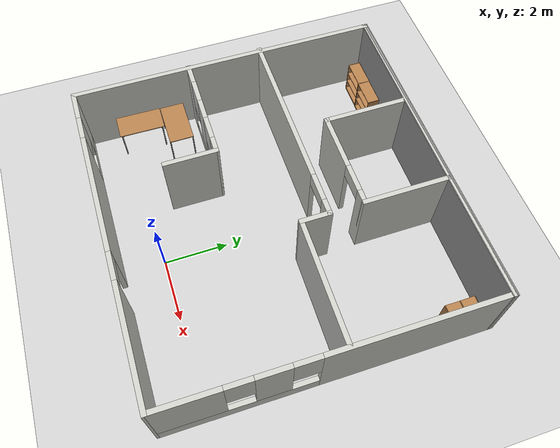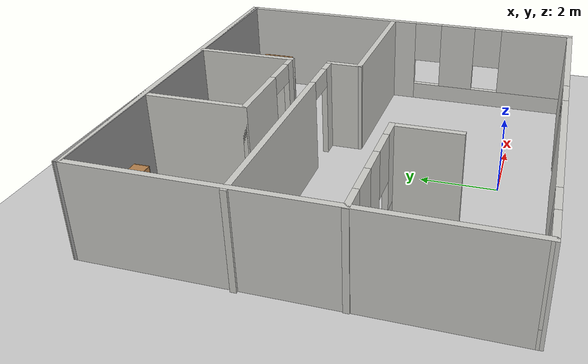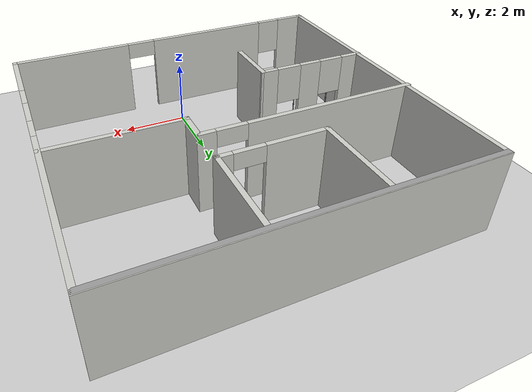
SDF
<sdf version="1.7">
 <world name="default">
  <light name="sun" type="directional">
   <pose>0 0 10 0 -0 0</pose>
   <diffuse>0.8 0.8 0.8 1</diffuse>
   <specular>0.2 0.2 0.2 1</specular>
   <attenuation>
    <range>1000</range>
    <constant>0.9</constant>
    <linear>0.01</linear>
    <quadratic>0.001</quadratic>
   </attenuation>
   <direction>-0.5 0.1 -0.9</direction>
   <spot><inner_angle>0</inner_angle><outer_angle>0</outer_angle><falloff>0</falloff></spot>
  </light>
  <model name="ground_plane">
   <static>1</static>
   <link name="link">
    <collision name="collision">
     <geometry><plane><normal>0 0 1</normal><size>100 100</size></plane></geometry>
     <surface><friction><ode><mu>100</mu><mu2>50</mu2></ode></friction></surface>
    </collision>
    <visual name="visual">
     <cast_shadows>0</cast_shadows>
     <geometry><plane><normal>0 0 1</normal><size>100 100</size></plane></geometry>
     <material>
      <script><uri>file://media/materials/scripts/gazebo.material</uri><name>Gazebo/Grey</name></script>
     </material>
    </visual>
   </link>
  </model>
  <gravity>0 0 -9.8</gravity>
  <magnetic_field>6e-06 2.3e-05 -4.2e-05</magnetic_field>
  <atmosphere type="adiabatic"/>
  <physics type="ode">
   <max_step_size>0.001</max_step_size>
   <real_time_factor>1</real_time_factor>
   <real_time_update_rate>1000</real_time_update_rate>
  </physics>
  <scene><ambient>0.4 0.4 0.4 1</ambient><background>0.7 0.7 0.7 1</background><shadows>1</shadows></scene>
  <audio><device>default</device></audio>
  <spherical_coordinates>
   <surface_model>EARTH_WGS84</surface_model>
   <latitude_deg>0</latitude_deg>
   <longitude_deg>0</longitude_deg>
   <elevation>0</elevation>
   <heading_deg>0</heading_deg>
  </spherical_coordinates>
  <model name="first_house">
   <pose>-0.171609 3.63557 0 0 -0 0</pose>
   <link name="Wall_25">
    <collision name="Wall_25_Collision">
     <geometry><box><size>10.5 0.15 2.5</size></box></geometry>
     <pose>0 0 1.25 0 -0 0</pose>
    </collision>
    <visual name="Wall_25_Visual">
     <pose>0 0 1.25 0 -0 0</pose>
     <geometry><box><size>10.5 0.15 2.5</size></box></geometry>
     <material>
      <script><uri>file://media/materials/scripts/gazebo.material</uri><name>Gazebo/Grey</name></script>
      <ambient>1 1 1 1</ambient>
     </material>
     <meta><layer>0</layer></meta>
    </visual>
    <pose>0.038089 4.9563 0 0 -0 0</pose>
   </link>
   <link name="Wall_26">
    <pose>5.19503 -0.012866 0 0 -0 -1.57443</pose>
    <visual name="Wall_26_Visual_0">
     <pose>-2.32998 0 1.25 0 -0 0</pose>
     <geometry><box><size>5.42844 0.15 2.5</size></box></geometry>
     <material>
      <script><uri>file://media/materials/scripts/gazebo.material</uri><name>Gazebo/CeilingTiled</name></script>
      <ambient>1 1 1 1</ambient>
     </material>
     <meta><layer>0</layer></meta>
    </visual>
    <collision name="Wall_26_Collision_0">
     <geometry><box><size>5.42844 0.15 2.5</size></box></geometry>
     <pose>-2.32998 0 1.25 0 -0 0</pose>
    </collision>
    <visual name="Wall_26_Visual_1">
     <pose>2.71422 0 0.25 0 -0 0</pose>
     <geometry><box><size>4.65996 0.15 0.5</size></box></geometry>
     <material>
      <script><uri>file://media/materials/scripts/gazebo.material</uri><name>Gazebo/CeilingTiled</name></script>
      <ambient>1 1 1 1</ambient>
     </material>
     <meta><layer>0</layer></meta>
    </visual>
    <collision name="Wall_26_Collision_1">
     <geometry><box><size>4.65996 0.15 0.5</size></box></geometry>
     <pose>2.71422 0 0.25 0 -0 0</pose>
    </collision>
    <visual name="Wall_26_Visual_2">
     <pose>1.69481 0 1.5 0 -0 0</pose>
     <geometry><box><size>1.02115 0.15 2</size></box></geometry>
     <material>
      <script><uri>file://media/materials/scripts/gazebo.material</uri><name>Gazebo/CeilingTiled</name></script>
      <ambient>1 1 1 1</ambient>
     </material>
     <meta><layer>0</layer></meta>
    </visual>
    <collision name="Wall_26_Collision_2">
     <geometry><box><size>1.02115 0.15 2</size></box></geometry>
     <pose>1.69481 0 1.5 0 -0 0</pose>
    </collision>
    <visual name="Wall_26_Visual_3">
     <pose>4.0248 0 1.5 0 -0 0</pose>
     <geometry><box><size>2.03881 0.15 2</size></box></geometry>
     <material>
      <script><uri>file://media/materials/scripts/gazebo.material</uri><name>Gazebo/CeilingTiled</name></script>
      <ambient>1 1 1 1</ambient>
     </material>
     <meta><layer>0</layer></meta>
    </visual>
    <collision name="Wall_26_Collision_3">
     <geometry><box><size>2.03881 0.15 2</size></box></geometry>
     <pose>4.0248 0 1.5 0 -0 0</pose>
    </collision>
    <visual name="Wall_26_Visual_4">
     <pose>0.784239 0 1.9 0 -0 0</pose>
     <geometry><box><size>0.8 0.15 1.2</size></box></geometry>
     <material>
      <script><uri>file://media/materials/scripts/gazebo.material</uri><name>Gazebo/CeilingTiled</name></script>
      <ambient>1 1 1 1</ambient>
     </material>
     <meta><layer>0</layer></meta>
    </visual>
    <collision name="Wall_26_Collision_4">
     <geometry><box><size>0.8 0.15 1.2</size></box></geometry>
     <pose>0.784239 0 1.9 0 -0 0</pose>
    </collision>
    <visual name="Wall_26_Visual_5">
     <pose>2.60539 0 1.9 0 -0 0</pose>
     <geometry><box><size>0.8 0.15 1.2</size></box></geometry>
     <material>
      <script><uri>file://media/materials/scripts/gazebo.material</uri><name>Gazebo/CeilingTiled</name></script>
      <ambient>1 1 1 1</ambient>
     </material>
     <meta><layer>0</layer></meta>
    </visual>
    <collision name="Wall_26_Collision_5">
     <geometry><box><size>0.8 0.15 1.2</size></box></geometry>
     <pose>2.60539 0 1.9 0 -0 0</pose>
    </collision>
   </link>
   <link name="Wall_27">
    <pose>0.001972 -4.98203 0 0 -0 3.14159</pose>
    <visual name="Wall_27_Visual_0">
     <pose>-3.38556 0 1.25 0 -0 0</pose>
     <geometry><box><size>3.72887 0.15 2.5</size></box></geometry>
     <material>
      <script><uri>file://media/materials/scripts/gazebo.material</uri><name>Gazebo/CeilingTiled</name></script>
      <ambient>1 1 1 1</ambient>
     </material>
     <meta><layer>0</layer></meta>
    </visual>
    <collision name="Wall_27_Collision_0">
     <geometry><box><size>3.72887 0.15 2.5</size></box></geometry>
     <pose>-3.38556 0 1.25 0 -0 0</pose>
    </collision>
    <visual name="Wall_27_Visual_1">
     <pose>1.40394 0 1.25 0 -0 0</pose>
     <geometry><box><size>4.05014 0.15 2.5</size></box></geometry>
     <material>
      <script><uri>file://media/materials/scripts/gazebo.material</uri><name>Gazebo/CeilingTiled</name></script>
      <ambient>1 1 1 1</ambient>
     </material>
     <meta><layer>0</layer></meta>
    </visual>
    <collision name="Wall_27_Collision_1">
     <geometry><box><size>4.05014 0.15 2.5</size></box></geometry>
     <pose>1.40394 0 1.25 0 -0 0</pose>
    </collision>
    <visual name="Wall_27_Visual_2">
     <pose>4.3395 0 0.25 0 -0 0</pose>
     <geometry><box><size>1.82099 0.15 0.5</size></box></geometry>
     <material>
      <script><uri>file://media/materials/scripts/gazebo.material</uri><name>Gazebo/CeilingTiled</name></script>
      <ambient>1 1 1 1</ambient>
     </material>
     <meta><layer>0</layer></meta>
    </visual>
    <collision name="Wall_27_Collision_2">
     <geometry><box><size>1.82099 0.15 0.5</size></box></geometry>
     <pose>4.3395 0 0.25 0 -0 0</pose>
    </collision>
    <visual name="Wall_27_Visual_3">
     <pose>4.73951 0 1.5 0 -0 0</pose>
     <geometry><box><size>1.02099 0.15 2</size></box></geometry>
     <material>
      <script><uri>file://media/materials/scripts/gazebo.material</uri><name>Gazebo/CeilingTiled</name></script>
      <ambient>1 1 1 1</ambient>
     </material>
     <meta><layer>0</layer></meta>
    </visual>
    <collision name="Wall_27_Collision_3">
     <geometry><box><size>1.02099 0.15 2</size></box></geometry>
     <pose>4.73951 0 1.5 0 -0 0</pose>
    </collision>
    <visual name="Wall_27_Visual_4">
     <pose>3.82901 0 1.9 0 -0 0</pose>
     <geometry><box><size>0.8 0.15 1.2</size></box></geometry>
     <material>
      <script><uri>file://media/materials/scripts/gazebo.material</uri><name>Gazebo/CeilingTiled</name></script>
      <ambient>1 1 1 1</ambient>
     </material>
     <meta><layer>0</layer></meta>
    </visual>
    <collision name="Wall_27_Collision_4">
     <geometry><box><size>0.8 0.15 1.2</size></box></geometry>
     <pose>3.82901 0 1.9 0 -0 0</pose>
    </collision>
    <visual name="Wall_27_Visual_5">
     <pose>-1.07113 0 2.25 0 -0 0</pose>
     <geometry><box><size>0.9 0.15 0.5</size></box></geometry>
     <material>
      <script><uri>file://media/materials/scripts/gazebo.material</uri><name>Gazebo/CeilingTiled</name></script>
      <ambient>1 1 1 1</ambient>
     </material>
     <meta><layer>0</layer></meta>
    </visual>
    <collision name="Wall_27_Collision_5">
     <geometry><box><size>0.9 0.15 0.5</size></box></geometry>
     <pose>-1.07113 0 2.25 0 -0 0</pose>
    </collision>
   </link>
   <link name="Wall_28">
    <collision name="Wall_28_Collision">
     <geometry><box><size>10.0884 0.15 2.5</size></box></geometry>
     <pose>0 0 1.25 0 -0 0</pose>
    </collision>
    <visual name="Wall_28_Visual">
     <pose>0 0 1.25 0 -0 0</pose>
     <geometry><box><size>10.0884 0.15 2.5</size></box></geometry>
     <material>
      <script><uri>file://media/materials/scripts/gazebo.material</uri><name>Gazebo/CeilingTiled</name></script>
      <ambient>1 1 1 1</ambient>
     </material>
     <meta><layer>0</layer></meta>
    </visual>
    <pose>-5.15497 -0.012866 0 0 -0 1.56716</pose>
   </link>
   <link name="Wall_29">
    <collision name="Wall_29_Collision">
     <geometry><box><size>10.5 0.15 2.5</size></box></geometry>
     <pose>0 0 1.25 0 -0 0</pose>
    </collision>
    <visual name="Wall_29_Visual">
     <pose>0 0 1.25 0 -0 0</pose>
     <geometry><box><size>10.5 0.15 2.5</size></box></geometry>
     <material>
      <script><uri>file://media/materials/scripts/gazebo.material</uri><name>Gazebo/CeilingTiled</name></script>
      <ambient>1 1 1 1</ambient>
     </material>
     <meta><layer>0</layer></meta>
    </visual>
    <pose>0.038089 4.98231 0 0 -0 0</pose>
   </link>
   <link name="Wall_33">
    <pose>-3.44599 -1.23739 0 0 -0 -0.009852</pose>
    <visual name="Wall_33_Visual_0">
     <pose>-1.45176 0 1.25 0 -0 0</pose>
     <geometry><box><size>0.717613 0.15 2.5</size></box></geometry>
     <material>
      <script><uri>file://media/materials/scripts/gazebo.material</uri><name>Gazebo/CeilingTiled</name></script>
      <ambient>1 1 1 1</ambient>
     </material>
     <meta><layer>0</layer></meta>
    </visual>
    <collision name="Wall_33_Collision_0">
     <geometry><box><size>0.717613 0.15 2.5</size></box></geometry>
     <pose>-1.45176 0 1.25 0 -0 0</pose>
    </collision>
    <visual name="Wall_33_Visual_1">
     <pose>0.358806 0 0.25 0 -0 0</pose>
     <geometry><box><size>2.90352 0.15 0.5</size></box></geometry>
     <material>
      <script><uri>file://media/materials/scripts/gazebo.material</uri><name>Gazebo/CeilingTiled</name></script>
      <ambient>1 1 1 1</ambient>
     </material>
     <meta><layer>0</layer></meta>
    </visual>
    <collision name="Wall_33_Collision_1">
     <geometry><box><size>2.90352 0.15 0.5</size></box></geometry>
     <pose>0.358806 0 0.25 0 -0 0</pose>
    </collision>
    <visual name="Wall_33_Visual_2">
     <pose>0.068137 0 1.5 0 -0 0</pose>
     <geometry><box><size>0.722186 0.15 2</size></box></geometry>
     <material>
      <script><uri>file://media/materials/scripts/gazebo.material</uri><name>Gazebo/CeilingTiled</name></script>
      <ambient>1 1 1 1</ambient>
     </material>
     <meta><layer>0</layer></meta>
    </visual>
    <collision name="Wall_33_Collision_2">
     <geometry><box><size>0.722186 0.15 2</size></box></geometry>
     <pose>0.068137 0 1.5 0 -0 0</pose>
    </collision>
    <visual name="Wall_33_Visual_3">
     <pose>1.5199 0 1.5 0 -0 0</pose>
     <geometry><box><size>0.581338 0.15 2</size></box></geometry>
     <material>
      <script><uri>file://media/materials/scripts/gazebo.material</uri><name>Gazebo/CeilingTiled</name></script>
      <ambient>1 1 1 1</ambient>
     </material>
     <meta><layer>0</layer></meta>
    </visual>
    <collision name="Wall_33_Collision_3">
     <geometry><box><size>0.581338 0.15 2</size></box></geometry>
     <pose>1.5199 0 1.5 0 -0 0</pose>
    </collision>
    <visual name="Wall_33_Visual_4">
     <pose>-0.692956 0 1.9 0 -0 0</pose>
     <geometry><box><size>0.8 0.15 1.2</size></box></geometry>
     <material>
      <script><uri>file://media/materials/scripts/gazebo.material</uri><name>Gazebo/CeilingTiled</name></script>
      <ambient>1 1 1 1</ambient>
     </material>
     <meta><layer>0</layer></meta>
    </visual>
    <collision name="Wall_33_Collision_4">
     <geometry><box><size>0.8 0.15 1.2</size></box></geometry>
     <pose>-0.692956 0 1.9 0 -0 0</pose>
    </collision>
    <visual name="Wall_33_Visual_5">
     <pose>0.82923 0 1.9 0 -0 0</pose>
     <geometry><box><size>0.8 0.15 1.2</size></box></geometry>
     <material>
      <script><uri>file://media/materials/scripts/gazebo.material</uri><name>Gazebo/CeilingTiled</name></script>
      <ambient>1 1 1 1</ambient>
     </material>
     <meta><layer>0</layer></meta>
    </visual>
    <collision name="Wall_33_Collision_5">
     <geometry><box><size>0.8 0.15 1.2</size></box></geometry>
     <pose>0.82923 0 1.9 0 -0 0</pose>
    </collision>
   </link>
   <link name="Wall_36">
    <pose>-1.91336 1.20823 0 0 -0 0</pose>
    <visual name="Wall_36_Visual_0">
     <pose>-0.722685 0 1.25 0 -0 0</pose>
     <geometry><box><size>5.30463 0.15 2.5</size></box></geometry>
     <material>
      <script><uri>file://media/materials/scripts/gazebo.material</uri><name>Gazebo/CeilingTiled</name></script>
      <ambient>1 1 1 1</ambient>
     </material>
     <meta><layer>0</layer></meta>
    </visual>
    <collision name="Wall_36_Collision_0">
     <geometry><box><size>5.30463 0.15 2.5</size></box></geometry>
     <pose>-0.722685 0 1.25 0 -0 0</pose>
    </collision>
    <visual name="Wall_36_Visual_1">
     <pose>3.10231 0 1.25 0 -0 0</pose>
     <geometry><box><size>0.54537 0.15 2.5</size></box></geometry>
     <material>
      <script><uri>file://media/materials/scripts/gazebo.material</uri><name>Gazebo/CeilingTiled</name></script>
      <ambient>1 1 1 1</ambient>
     </material>
     <meta><layer>0</layer></meta>
    </visual>
    <collision name="Wall_36_Collision_1">
     <geometry><box><size>0.54537 0.15 2.5</size></box></geometry>
     <pose>3.10231 0 1.25 0 -0 0</pose>
    </collision>
    <visual name="Wall_36_Visual_2">
     <pose>2.37963 0 2.25 0 -0 0</pose>
     <geometry><box><size>0.9 0.15 0.5</size></box></geometry>
     <material>
      <script><uri>file://media/materials/scripts/gazebo.material</uri><name>Gazebo/CeilingTiled</name></script>
      <ambient>1 1 1 1</ambient>
     </material>
     <meta><layer>0</layer></meta>
    </visual>
    <collision name="Wall_36_Collision_2">
     <geometry><box><size>0.9 0.15 0.5</size></box></geometry>
     <pose>2.37963 0 2.25 0 -0 0</pose>
    </collision>
   </link>
   <link name="Wall_37">
    <collision name="Wall_37_Collision">
     <geometry><box><size>1 0.15 2.5</size></box></geometry>
     <pose>0 0 1.25 0 -0 0</pose>
    </collision>
    <visual name="Wall_37_Visual">
     <pose>0 0 1.25 0 -0 0</pose>
     <geometry><box><size>1 0.15 2.5</size></box></geometry>
     <material>
      <script><uri>file://media/materials/scripts/gazebo.material</uri><name>Gazebo/CeilingTiled</name></script>
      <ambient>1 1 1 1</ambient>
     </material>
     <meta><layer>0</layer></meta>
    </visual>
    <pose>1.38664 0.783227 0 0 -0 -1.5708</pose>
   </link>
   <link name="Wall_38">
    <collision name="Wall_38_Collision">
     <geometry><box><size>3.95838 0.15 2.5</size></box></geometry>
     <pose>0 0 1.25 0 -0 0</pose>
    </collision>
    <visual name="Wall_38_Visual">
     <pose>0 0 1.25 0 -0 0</pose>
     <geometry><box><size>3.95838 0.15 2.5</size></box></geometry>
     <material>
      <script><uri>file://media/materials/scripts/gazebo.material</uri><name>Gazebo/CeilingTiled</name></script>
      <ambient>1 1 1 1</ambient>
     </material>
     <meta><layer>0</layer></meta>
    </visual>
    <pose>3.29049 0.337182 0 0 -0 -0.011053</pose>
   </link>
   <link name="Wall_43">
    <collision name="Wall_43_Collision">
     <geometry><box><size>2.75 0.15 2.5</size></box></geometry>
     <pose>0 0 1.25 0 -0 0</pose>
    </collision>
    <visual name="Wall_43_Visual">
     <pose>0 0 1.25 0 -0 0</pose>
     <geometry><box><size>2.75 0.15 2.5</size></box></geometry>
     <material>
      <script><uri>file://media/materials/scripts/gazebo.material</uri><name>Gazebo/CeilingTiled</name></script>
      <ambient>1 1 1 1</ambient>
     </material>
     <meta><layer>0</layer></meta>
    </visual>
    <pose>-1.74395 3.59719 0 0 -0 -1.5708</pose>
   </link>
   <link name="Wall_44">
    <pose>-0.193952 2.29719 0 0 -0 0</pose>
    <visual name="Wall_44_Visual_0">
     <pose>-0.694308 0 1.25 0 -0 0</pose>
     <geometry><box><size>1.86139 0.15 2.5</size></box></geometry>
     <material>
      <script><uri>file://media/materials/scripts/gazebo.material</uri><name>Gazebo/CeilingTiled</name></script>
      <ambient>1 1 1 1</ambient>
     </material>
     <meta><layer>0</layer></meta>
    </visual>
    <collision name="Wall_44_Collision_0">
     <geometry><box><size>1.86139 0.15 2.5</size></box></geometry>
     <pose>-0.694308 0 1.25 0 -0 0</pose>
    </collision>
    <visual name="Wall_44_Visual_1">
     <pose>1.38069 0 1.25 0 -0 0</pose>
     <geometry><box><size>0.488615 0.15 2.5</size></box></geometry>
     <material>
      <script><uri>file://media/materials/scripts/gazebo.material</uri><name>Gazebo/CeilingTiled</name></script>
      <ambient>1 1 1 1</ambient>
     </material>
     <meta><layer>0</layer></meta>
    </visual>
    <collision name="Wall_44_Collision_1">
     <geometry><box><size>0.488615 0.15 2.5</size></box></geometry>
     <pose>1.38069 0 1.25 0 -0 0</pose>
    </collision>
    <visual name="Wall_44_Visual_2">
     <pose>0.686385 0 2.25 0 -0 0</pose>
     <geometry><box><size>0.9 0.15 0.5</size></box></geometry>
     <material>
      <script><uri>file://media/materials/scripts/gazebo.material</uri><name>Gazebo/CeilingTiled</name></script>
      <ambient>1 1 1 1</ambient>
     </material>
     <meta><layer>0</layer></meta>
    </visual>
    <collision name="Wall_44_Collision_2">
     <geometry><box><size>0.9 0.15 0.5</size></box></geometry>
     <pose>0.686385 0 2.25 0 -0 0</pose>
    </collision>
   </link>
   <link name="Wall_45">
    <collision name="Wall_45_Collision">
     <geometry><box><size>2.75 0.15 2.5</size></box></geometry>
     <pose>0 0 1.25 0 -0 0</pose>
    </collision>
    <visual name="Wall_45_Visual">
     <pose>0 0 1.25 0 -0 0</pose>
     <geometry><box><size>2.75 0.15 2.5</size></box></geometry>
     <material>
      <script><uri>file://media/materials/scripts/gazebo.material</uri><name>Gazebo/CeilingTiled</name></script>
      <ambient>1 1 1 1</ambient>
     </material>
     <meta><layer>0</layer></meta>
    </visual>
    <pose>1.35605 3.59719 0 0 -0 1.5708</pose>
   </link>
   <link name="Wall_49">
    <collision name="Wall_49_Collision">
     <geometry><box><size>1.75 0.15 2.5</size></box></geometry>
     <pose>0 0 1.25 0 -0 0</pose>
    </collision>
    <visual name="Wall_49_Visual">
     <pose>0 0 1.25 0 -0 0</pose>
     <geometry><box><size>1.75 0.15 2.5</size></box></geometry>
     <material>
      <script><uri>file://media/materials/scripts/gazebo.material</uri><name>Gazebo/CeilingTiled</name></script>
      <ambient>1 1 1 1</ambient>
     </material>
     <meta><layer>0</layer></meta>
    </visual>
    <pose>-1.71051 -2.05449 0 0 -0 -1.5708</pose>
   </link>
   <static>1</static>
  </model>
  <model name="cabinet">
   <static>1</static>
   <link name="cabinet_bottom_plate">
    <inertial>
     <pose>0 0 -1 0 -0 0</pose>
     <inertia><ixx>2.05</ixx><ixy>0</ixy><ixz>0</ixz><iyy>2.05</iyy><iyz>0</iyz><izz>2.05</izz></inertia>
     <mass>25</mass>
    </inertial>
    <collision name="cabinet_bottom_plate_geom">
     <pose>0 0 0.01 0 -0 0</pose>
     <geometry><box><size>0.45 0.45 0.02</size></box></geometry>
    </collision>
    <visual name="cabinet_bottom_plate_geom_visual">
     <pose>0 0 0.01 0 -0 0</pose>
     <geometry><box><size>0.45 0.45 0.02</size></box></geometry>
     <material>
      <script><uri>file://media/materials/scripts/gazebo.material</uri><name>Gazebo/Wood</name></script>
     </material>
    </visual>
    <collision name="cabinet_bottom_plate_geom_cabinet_back_plate">
     <pose>0.235 0 0.51 0 -0 0</pose>
     <geometry><box><size>0.02 0.45 1.02</size></box></geometry>
    </collision>
    <visual name="cabinet_bottom_plate_geom_cabinet_back_plate_visual">
     <pose>0.235 0 0.51 0 -0 0</pose>
     <geometry><box><size>0.02 0.45 1.02</size></box></geometry>
     <material>
      <script><uri>file://media/materials/scripts/gazebo.material</uri><name>Gazebo/Wood</name></script>
     </material>
    </visual>
    <collision name="cabinet_bottom_plate_geom_cabinet_left_plate">
     <pose>0 0.235 0.51 0 -0 0</pose>
     <geometry><box><size>0.45 0.02 1.02</size></box></geometry>
    </collision>
    <visual name="cabinet_bottom_plate_geom_cabinet_left_plate_visual">
     <pose>0 0.235 0.51 0 -0 0</pose>
     <geometry><box><size>0.45 0.02 1.02</size></box></geometry>
     <material>
      <script><uri>file://media/materials/scripts/gazebo.material</uri><name>Gazebo/Wood</name></script>
     </material>
    </visual>
    <collision name="cabinet_bottom_plate_geom_cabinet_middle_plate">
     <pose>0 0 0.51 0 -0 0</pose>
     <geometry><box><size>0.45 0.45 0.02</size></box></geometry>
    </collision>
    <visual name="cabinet_bottom_plate_geom_cabinet_middle_plate_visual">
     <pose>0 0 0.51 0 -0 0</pose>
     <geometry><box><size>0.45 0.45 0.02</size></box></geometry>
     <material>
      <script><uri>file://media/materials/scripts/gazebo.material</uri><name>Gazebo/Wood</name></script>
     </material>
    </visual>
    <collision name="cabinet_bottom_plate_geom_cabinet_right_plate">
     <pose>0 -0.235 0.51 0 -0 0</pose>
     <geometry><box><size>0.45 0.02 1.02</size></box></geometry>
    </collision>
    <visual name="cabinet_bottom_plate_geom_cabinet_right_plate_visual">
     <pose>0 -0.235 0.51 0 -0 0</pose>
     <geometry><box><size>0.45 0.02 1.02</size></box></geometry>
     <material>
      <script><uri>file://media/materials/scripts/gazebo.material</uri><name>Gazebo/Wood</name></script>
     </material>
    </visual>
    <collision name="cabinet_bottom_plate_geom_cabinet_top_plate">
     <pose>0 0 1.01 0 -0 0</pose>
     <geometry><box><size>0.45 0.45 0.02</size></box></geometry>
    </collision>
    <visual name="cabinet_bottom_plate_geom_cabinet_top_plate_visual">
     <pose>0 0 1.01 0 -0 0</pose>
     <geometry><box><size>0.45 0.45 0.02</size></box></geometry>
     <material>
      <script><uri>file://media/materials/scripts/gazebo.material</uri><name>Gazebo/Wood</name></script>
     </material>
    </visual>
   </link>
   <pose>4.55901 7.98947 0 0 -0 0</pose>
  </model>
  <model name="cabinet_0">
   <static>1</static>
   <link name="cabinet_bottom_plate">
    <inertial>
     <pose>0 0 -1 0 -0 0</pose>
     <inertia><ixx>2.05</ixx><ixy>0</ixy><ixz>0</ixz><iyy>2.05</iyy><iyz>0</iyz><izz>2.05</izz></inertia>
     <mass>25</mass>
    </inertial>
    <collision name="cabinet_bottom_plate_geom">
     <pose>0 0 0.01 0 -0 0</pose>
     <geometry><box><size>0.45 0.45 0.02</size></box></geometry>
    </collision>
    <visual name="cabinet_bottom_plate_geom_visual">
     <pose>0 0 0.01 0 -0 0</pose>
     <geometry><box><size>0.45 0.45 0.02</size></box></geometry>
     <material>
      <script><uri>file://media/materials/scripts/gazebo.material</uri><name>Gazebo/Wood</name></script>
     </material>
    </visual>
    <collision name="cabinet_bottom_plate_geom_cabinet_back_plate">
     <pose>0.235 0 0.51 0 -0 0</pose>
     <geometry><box><size>0.02 0.45 1.02</size></box></geometry>
    </collision>
    <visual name="cabinet_bottom_plate_geom_cabinet_back_plate_visual">
     <pose>0.235 0 0.51 0 -0 0</pose>
     <geometry><box><size>0.02 0.45 1.02</size></box></geometry>
     <material>
      <script><uri>file://media/materials/scripts/gazebo.material</uri><name>Gazebo/Wood</name></script>
     </material>
    </visual>
    <collision name="cabinet_bottom_plate_geom_cabinet_left_plate">
     <pose>0 0.235 0.51 0 -0 0</pose>
     <geometry><box><size>0.45 0.02 1.02</size></box></geometry>
    </collision>
    <visual name="cabinet_bottom_plate_geom_cabinet_left_plate_visual">
     <pose>0 0.235 0.51 0 -0 0</pose>
     <geometry><box><size>0.45 0.02 1.02</size></box></geometry>
     <material>
      <script><uri>file://media/materials/scripts/gazebo.material</uri><name>Gazebo/Wood</name></script>
     </material>
    </visual>
    <collision name="cabinet_bottom_plate_geom_cabinet_middle_plate">
     <pose>0 0 0.51 0 -0 0</pose>
     <geometry><box><size>0.45 0.45 0.02</size></box></geometry>
    </collision>
    <visual name="cabinet_bottom_plate_geom_cabinet_middle_plate_visual">
     <pose>0 0 0.51 0 -0 0</pose>
     <geometry><box><size>0.45 0.45 0.02</size></box></geometry>
     <material>
      <script><uri>file://media/materials/scripts/gazebo.material</uri><name>Gazebo/Wood</name></script>
     </material>
    </visual>
    <collision name="cabinet_bottom_plate_geom_cabinet_right_plate">
     <pose>0 -0.235 0.51 0 -0 0</pose>
     <geometry><box><size>0.45 0.02 1.02</size></box></geometry>
    </collision>
    <visual name="cabinet_bottom_plate_geom_cabinet_right_plate_visual">
     <pose>0 -0.235 0.51 0 -0 0</pose>
     <geometry><box><size>0.45 0.02 1.02</size></box></geometry>
     <material>
      <script><uri>file://media/materials/scripts/gazebo.material</uri><name>Gazebo/Wood</name></script>
     </material>
    </visual>
    <collision name="cabinet_bottom_plate_geom_cabinet_top_plate">
     <pose>0 0 1.01 0 -0 0</pose>
     <geometry><box><size>0.45 0.45 0.02</size></box></geometry>
    </collision>
    <visual name="cabinet_bottom_plate_geom_cabinet_top_plate_visual">
     <pose>0 0 1.01 0 -0 0</pose>
     <geometry><box><size>0.45 0.45 0.02</size></box></geometry>
     <material>
      <script><uri>file://media/materials/scripts/gazebo.material</uri><name>Gazebo/Wood</name></script>
     </material>
    </visual>
   </link>
   <pose>4.56021 7.51241 0 0 -0 0</pose>
  </model>
  <model name="table">
   <static>1</static>
   <link name="link">
    <collision name="surface">
     <pose>0 0 1 0 -0 0</pose>
     <geometry><box><size>1.5 0.8 0.03</size></box></geometry>
     <surface><friction><ode><mu>0.6</mu><mu2>0.6</mu2></ode></friction></surface>
    </collision>
    <visual name="visual1">
     <pose>0 0 1 0 -0 0</pose>
     <geometry><box><size>1.5 0.8 0.03</size></box></geometry>
     <material>
      <script><uri>file://media/materials/scripts/gazebo.material</uri><name>Gazebo/Wood</name></script>
     </material>
    </visual>
    <collision name="front_left_leg">
     <pose>0.68 0.38 0.5 0 -0 0</pose>
     <geometry><cylinder><radius>0.02</radius><length>1</length></cylinder></geometry>
    </collision>
    <visual name="front_left_leg">
     <pose>0.68 0.38 0.5 0 -0 0</pose>
     <geometry><cylinder><radius>0.02</radius><length>1</length></cylinder></geometry>
     <material>
      <script><uri>file://media/materials/scripts/gazebo.material</uri><name>Gazebo/Grey</name></script>
     </material>
    </visual>
    <collision name="front_right_leg">
     <pose>0.68 -0.38 0.5 0 -0 0</pose>
     <geometry><cylinder><radius>0.02</radius><length>1</length></cylinder></geometry>
    </collision>
    <visual name="front_right_leg">
     <pose>0.68 -0.38 0.5 0 -0 0</pose>
     <geometry><cylinder><radius>0.02</radius><length>1</length></cylinder></geometry>
     <material>
      <script><uri>file://media/materials/scripts/gazebo.material</uri><name>Gazebo/Grey</name></script>
     </material>
    </visual>
    <collision name="back_right_leg">
     <pose>-0.68 -0.38 0.5 0 -0 0</pose>
     <geometry><cylinder><radius>0.02</radius><length>1</length></cylinder></geometry>
    </collision>
    <visual name="back_right_leg">
     <pose>-0.68 -0.38 0.5 0 -0 0</pose>
     <geometry><cylinder><radius>0.02</radius><length>1</length></cylinder></geometry>
     <material>
      <script><uri>file://media/materials/scripts/gazebo.material</uri><name>Gazebo/Grey</name></script>
     </material>
    </visual>
    <collision name="back_left_leg">
     <pose>-0.68 0.38 0.5 0 -0 0</pose>
     <geometry><cylinder><radius>0.02</radius><length>1</length></cylinder></geometry>
    </collision>
    <visual name="back_left_leg">
     <pose>-0.68 0.38 0.5 0 -0 0</pose>
     <geometry><cylinder><radius>0.02</radius><length>1</length></cylinder></geometry>
     <material>
      <script><uri>file://media/materials/scripts/gazebo.material</uri><name>Gazebo/Grey</name></script>
     </material>
    </visual>
   </link>
   <pose>-4.47847 1.59594 0 0 -0 0</pose>
  </model>
  <model name="table_0">
   <static>1</static>
   <link name="link">
    <collision name="surface">
     <pose>0 0 1 0 -0 0</pose>
     <geometry><box><size>1.5 0.8 0.03</size></box></geometry>
     <surface><friction><ode><mu>0.6</mu><mu2>0.6</mu2></ode></friction></surface>
    </collision>
    <visual name="visual1">
     <pose>0 0 1 0 -0 0</pose>
     <geometry><box><size>1.5 0.8 0.03</size></box></geometry>
     <material>
      <script><uri>file://media/materials/scripts/gazebo.material</uri><name>Gazebo/Wood</name></script>
     </material>
    </visual>
    <collision name="front_left_leg">
     <pose>0.68 0.38 0.5 0 -0 0</pose>
     <geometry><cylinder><radius>0.02</radius><length>1</length></cylinder></geometry>
    </collision>
    <visual name="front_left_leg">
     <pose>0.68 0.38 0.5 0 -0 0</pose>
     <geometry><cylinder><radius>0.02</radius><length>1</length></cylinder></geometry>
     <material>
      <script><uri>file://media/materials/scripts/gazebo.material</uri><name>Gazebo/Grey</name></script>
     </material>
    </visual>
    <collision name="front_right_leg">
     <pose>0.68 -0.38 0.5 0 -0 0</pose>
     <geometry><cylinder><radius>0.02</radius><length>1</length></cylinder></geometry>
    </collision>
    <visual name="front_right_leg">
     <pose>0.68 -0.38 0.5 0 -0 0</pose>
     <geometry><cylinder><radius>0.02</radius><length>1</length></cylinder></geometry>
     <material>
      <script><uri>file://media/materials/scripts/gazebo.material</uri><name>Gazebo/Grey</name></script>
     </material>
    </visual>
    <collision name="back_right_leg">
     <pose>-0.68 -0.38 0.5 0 -0 0</pose>
     <geometry><cylinder><radius>0.02</radius><length>1</length></cylinder></geometry>
    </collision>
    <visual name="back_right_leg">
     <pose>-0.68 -0.38 0.5 0 -0 0</pose>
     <geometry><cylinder><radius>0.02</radius><length>1</length></cylinder></geometry>
     <material>
      <script><uri>file://media/materials/scripts/gazebo.material</uri><name>Gazebo/Grey</name></script>
     </material>
    </visual>
    <collision name="back_left_leg">
     <pose>-0.68 0.38 0.5 0 -0 0</pose>
     <geometry><cylinder><radius>0.02</radius><length>1</length></cylinder></geometry>
    </collision>
    <visual name="back_left_leg">
     <pose>-0.68 0.38 0.5 0 -0 0</pose>
     <geometry><cylinder><radius>0.02</radius><length>1</length></cylinder></geometry>
     <material>
      <script><uri>file://media/materials/scripts/gazebo.material</uri><name>Gazebo/Grey</name></script>
     </material>
    </visual>
   </link>
   <pose>-4.85488 0.429534 0 0 0 -1.58471</pose>
  </model>
  <model name="bookshelf">
   <static>1</static>
   <link name="link">
    <inertial><mass>1</mass></inertial>
    <collision name="back">
     <pose>0 0.005 0.6 0 -0 0</pose>
     <geometry><box><size>0.9 0.01 1.2</size></box></geometry>
    </collision>
    <visual name="visual1">
     <pose>0 0.005 0.6 0 -0 0</pose>
     <geometry><box><size>0.9 0.01 1.2</size></box></geometry>
     <material>
      <script><uri>file://media/materials/scripts/gazebo.material</uri><name>Gazebo/Wood</name></script>
     </material>
    </visual>
    <collision name="left_side">
     <pose>0.45 -0.195 0.6 0 -0 0</pose>
     <geometry><box><size>0.02 0.4 1.2</size></box></geometry>
    </collision>
    <visual name="visual2">
     <pose>0.45 -0.195 0.6 0 -0 0</pose>
     <geometry><box><size>0.02 0.4 1.2</size></box></geometry>
     <material>
      <script><uri>file://media/materials/scripts/gazebo.material</uri><name>Gazebo/Wood</name></script>
     </material>
    </visual>
    <collision name="right_side">
     <pose>-0.45 -0.195 0.6 0 -0 0</pose>
     <geometry><box><size>0.02 0.4 1.2</size></box></geometry>
    </collision>
    <visual name="visual3">
     <pose>-0.45 -0.195 0.6 0 -0 0</pose>
     <geometry><box><size>0.02 0.4 1.2</size></box></geometry>
     <material>
      <script><uri>file://media/materials/scripts/gazebo.material</uri><name>Gazebo/Wood</name></script>
     </material>
    </visual>
    <collision name="bottom">
     <pose>0 -0.195 0.03 0 -0 0</pose>
     <geometry><box><size>0.88 0.4 0.06</size></box></geometry>
    </collision>
    <visual name="visual4">
     <pose>0 -0.195 0.03 0 -0 0</pose>
     <geometry><box><size>0.88 0.4 0.06</size></box></geometry>
     <material>
      <script><uri>file://media/materials/scripts/gazebo.material</uri><name>Gazebo/Wood</name></script>
     </material>
    </visual>
    <collision name="top">
     <pose>0 -0.195 1.19 0 -0 0</pose>
     <geometry><box><size>0.88 0.4 0.02</size></box></geometry>
    </collision>
    <visual name="visual5">
     <pose>0 -0.195 1.19 0 -0 0</pose>
     <geometry><box><size>0.88 0.4 0.02</size></box></geometry>
     <material>
      <script><uri>file://media/materials/scripts/gazebo.material</uri><name>Gazebo/Wood</name></script>
     </material>
    </visual>
    <collision name="low_shelf">
     <pose>0 -0.195 0.43 0 -0 0</pose>
     <geometry><box><size>0.88 0.4 0.02</size></box></geometry>
    </collision>
    <visual name="visual6">
     <pose>0 -0.195 0.43 0 -0 0</pose>
     <geometry><box><size>0.88 0.4 0.02</size></box></geometry>
     <material>
      <script><uri>file://media/materials/scripts/gazebo.material</uri><name>Gazebo/Wood</name></script>
     </material>
    </visual>
    <collision name="high_shelf">
     <pose>0 -0.195 0.8 0 -0 0</pose>
     <geometry><box><size>0.88 0.4 0.02</size></box></geometry>
    </collision>
    <visual name="visual7">
     <pose>0 -0.195 0.8 0 -0 0</pose>
     <geometry><box><size>0.88 0.4 0.02</size></box></geometry>
     <material>
      <script><uri>file://media/materials/scripts/gazebo.material</uri><name>Gazebo/Wood</name></script>
     </material>
    </visual>
   </link>
   <pose>-4.4409 8.38307 0 0 -0 0</pose>
  </model>
  <model name="bookshelf_0">
   <static>1</static>
   <link name="link">
    <inertial><mass>1</mass></inertial>
    <collision name="back">
     <pose>0 0.005 0.6 0 -0 0</pose>
     <geometry><box><size>0.9 0.01 1.2</size></box></geometry>
    </collision>
    <visual name="visual1">
     <pose>0 0.005 0.6 0 -0 0</pose>
     <geometry><box><size>0.9 0.01 1.2</size></box></geometry>
     <material>
      <script><uri>file://media/materials/scripts/gazebo.material</uri><name>Gazebo/Wood</name></script>
     </material>
    </visual>
    <collision name="left_side">
     <pose>0.45 -0.195 0.6 0 -0 0</pose>
     <geometry><box><size>0.02 0.4 1.2</size></box></geometry>
    </collision>
    <visual name="visual2">
     <pose>0.45 -0.195 0.6 0 -0 0</pose>
     <geometry><box><size>0.02 0.4 1.2</size></box></geometry>
     <material>
      <script><uri>file://media/materials/scripts/gazebo.material</uri><name>Gazebo/Wood</name></script>
     </material>
    </visual>
    <collision name="right_side">
     <pose>-0.45 -0.195 0.6 0 -0 0</pose>
     <geometry><box><size>0.02 0.4 1.2</size></box></geometry>
    </collision>
    <visual name="visual3">
     <pose>-0.45 -0.195 0.6 0 -0 0</pose>
     <geometry><box><size>0.02 0.4 1.2</size></box></geometry>
     <material>
      <script><uri>file://media/materials/scripts/gazebo.material</uri><name>Gazebo/Wood</name></script>
     </material>
    </visual>
    <collision name="bottom">
     <pose>0 -0.195 0.03 0 -0 0</pose>
     <geometry><box><size>0.88 0.4 0.06</size></box></geometry>
    </collision>
    <visual name="visual4">
     <pose>0 -0.195 0.03 0 -0 0</pose>
     <geometry><box><size>0.88 0.4 0.06</size></box></geometry>
     <material>
      <script><uri>file://media/materials/scripts/gazebo.material</uri><name>Gazebo/Wood</name></script>
     </material>
    </visual>
    <collision name="top">
     <pose>0 -0.195 1.19 0 -0 0</pose>
     <geometry><box><size>0.88 0.4 0.02</size></box></geometry>
    </collision>
    <visual name="visual5">
     <pose>0 -0.195 1.19 0 -0 0</pose>
     <geometry><box><size>0.88 0.4 0.02</size></box></geometry>
     <material>
      <script><uri>file://media/materials/scripts/gazebo.material</uri><name>Gazebo/Wood</name></script>
     </material>
    </visual>
    <collision name="low_shelf">
     <pose>0 -0.195 0.43 0 -0 0</pose>
     <geometry><box><size>0.88 0.4 0.02</size></box></geometry>
    </collision>
    <visual name="visual6">
     <pose>0 -0.195 0.43 0 -0 0</pose>
     <geometry><box><size>0.88 0.4 0.02</size></box></geometry>
     <material>
      <script><uri>file://media/materials/scripts/gazebo.material</uri><name>Gazebo/Wood</name></script>
     </material>
    </visual>
    <collision name="high_shelf">
     <pose>0 -0.195 0.8 0 -0 0</pose>
     <geometry><box><size>0.88 0.4 0.02</size></box></geometry>
    </collision>
    <visual name="visual7">
     <pose>0 -0.195 0.8 0 -0 0</pose>
     <geometry><box><size>0.88 0.4 0.02</size></box></geometry>
     <material>
      <script><uri>file://media/materials/scripts/gazebo.material</uri><name>Gazebo/Wood</name></script>
     </material>
    </visual>
   </link>
   <pose>-3.54483 8.37073 0 0 -0 0</pose>
  </model>
 </world>
</sdf>
